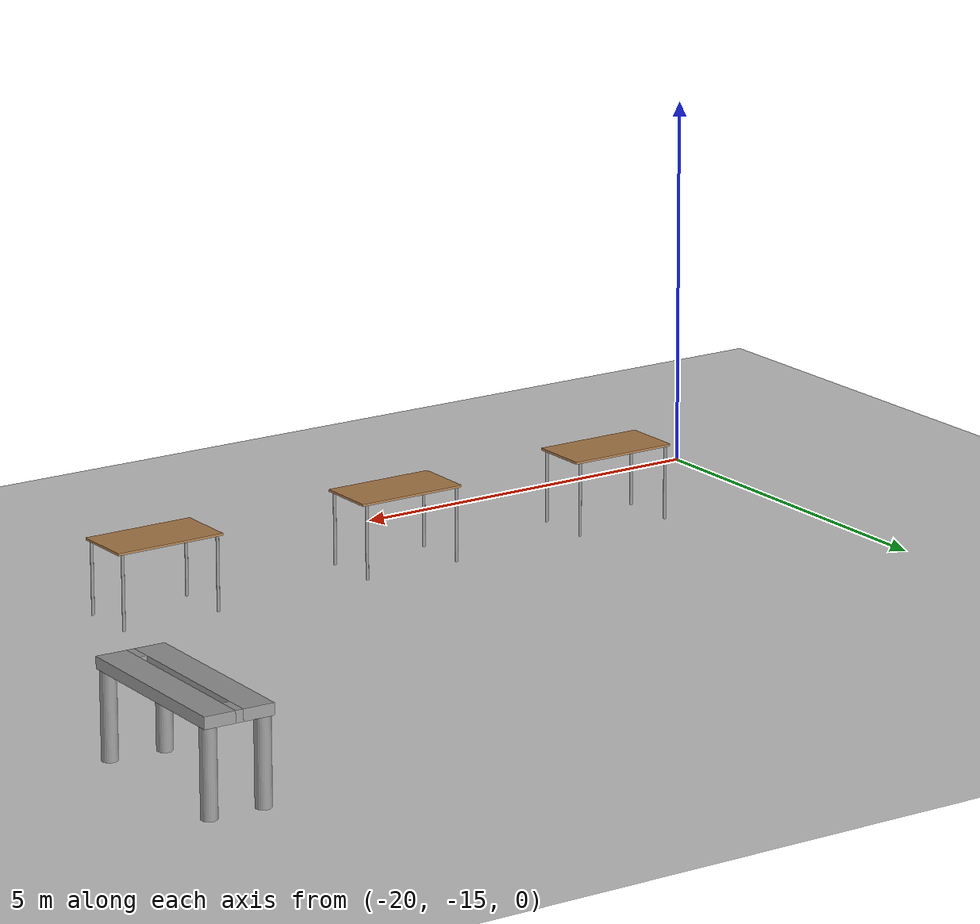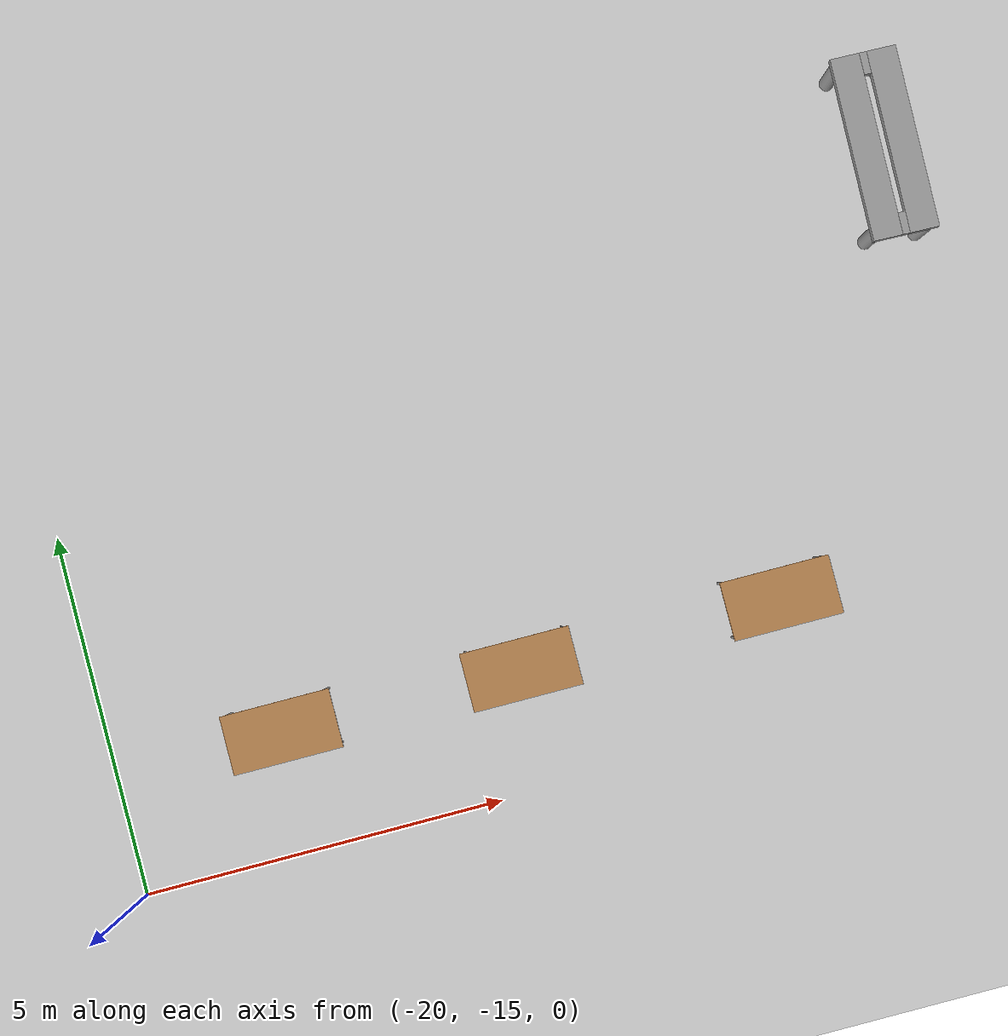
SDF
<sdf version="1.6">
 <world name="default">
  <model name="ground_plane">
   <static>1</static>
   <link name="link">
    <collision name="collision">
     <geometry><plane><normal>0 0 1</normal><size>100 100</size></plane></geometry>
     <surface><friction><ode><mu>100</mu><mu2>50</mu2></ode></friction></surface>
    </collision>
    <visual name="visual">
     <cast_shadows>0</cast_shadows>
     <geometry><plane><normal>0 0 1</normal><size>100 100</size></plane></geometry>
     <material>
      <script><uri>file://media/materials/scripts/gazebo.material</uri><name>Gazebo/Grey</name></script>
     </material>
    </visual>
   </link>
  </model>
  <model name="work_table">
   <link name="link_0">
    <pose>1.115 -0.35 -0.3125 0 -0 0</pose>
    <inertial>
     <mass>1</mass>
     <inertia><ixx>0.145833</ixx><ixy>0</ixy><ixz>0</ixz><iyy>0.145833</iyy><iyz>0</iyz><izz>0.125</izz></inertia>
    </inertial>
    <visual name="visual">
     <geometry><cylinder><radius>0.1</radius><length>1.1</length></cylinder></geometry>
     <material>
      <lighting>1</lighting>
      <script><uri>file://media/materials/scripts/gazebo.material</uri><name>Gazebo/Grey</name></script>
      <ambient>0.3 0.3 0.3 1</ambient>
      <diffuse>0.7 0.7 0.7 1</diffuse>
      <specular>0.01 0.01 0.01 1</specular>
      <emissive>0 0 0 1</emissive>
      <shader type="vertex"><normal_map>__default__</normal_map></shader>
     </material>
    </visual>
    <collision name="collision">
     <geometry><cylinder><radius>0.1</radius><length>1.1</length></cylinder></geometry>
     <surface>
      <friction>
       <ode><mu>1</mu><mu2>1</mu2><fdir1>0 0 0</fdir1><slip1>0</slip1><slip2>0</slip2></ode>
       <torsional>
        <coefficient>1</coefficient>
        <patch_radius>0</patch_radius>
        <surface_radius>0</surface_radius>
        <use_patch_radius>1</use_patch_radius>
        <ode><slip>0</slip></ode>
       </torsional>
      </friction>
      <bounce><restitution_coefficient>0</restitution_coefficient><threshold>1e+06</threshold></bounce>
      <contact>
       <collide_without_contact>0</collide_without_contact>
       <collide_without_contact_bitmask>1</collide_without_contact_bitmask>
       <collide_bitmask>1</collide_bitmask>
       <ode>
        <soft_cfm>0</soft_cfm>
        <soft_erp>0.2</soft_erp>
        <kp>1e+13</kp>
        <kd>1</kd>
        <max_vel>0.01</max_vel>
        <min_depth>0</min_depth>
       </ode>
       <bullet>
        <split_impulse>1</split_impulse>
        <split_impulse_penetration_threshold>-0.01</split_impulse_penetration_threshold>
        <soft_cfm>0</soft_cfm>
        <soft_erp>0.2</soft_erp>
        <kp>1e+13</kp>
        <kd>1</kd>
       </bullet>
      </contact>
     </surface>
    </collision>
   </link>
   <link name="link_0_clone">
    <pose>-1.145 -0.35 -0.3125 0 -0 0</pose>
    <inertial>
     <mass>1</mass>
     <inertia><ixx>0.145833</ixx><ixy>0</ixy><ixz>0</ixz><iyy>0.145833</iyy><iyz>0</iyz><izz>0.125</izz></inertia>
    </inertial>
    <visual name="visual">
     <geometry><cylinder><radius>0.1</radius><length>1.1</length></cylinder></geometry>
     <material>
      <lighting>1</lighting>
      <script><uri>file://media/materials/scripts/gazebo.material</uri><name>Gazebo/Grey</name></script>
      <ambient>0.3 0.3 0.3 1</ambient>
      <diffuse>0.7 0.7 0.7 1</diffuse>
      <specular>0.01 0.01 0.01 1</specular>
      <emissive>0 0 0 1</emissive>
      <shader type="vertex"><normal_map>__default__</normal_map></shader>
     </material>
    </visual>
    <collision name="collision">
     <geometry><cylinder><radius>0.1</radius><length>1.1</length></cylinder></geometry>
     <surface>
      <friction>
       <ode><mu>1</mu><mu2>1</mu2><fdir1>0 0 0</fdir1><slip1>0</slip1><slip2>0</slip2></ode>
       <torsional>
        <coefficient>1</coefficient>
        <patch_radius>0</patch_radius>
        <surface_radius>0</surface_radius>
        <use_patch_radius>1</use_patch_radius>
        <ode><slip>0</slip></ode>
       </torsional>
      </friction>
      <bounce><restitution_coefficient>0</restitution_coefficient><threshold>1e+06</threshold></bounce>
      <contact>
       <collide_without_contact>0</collide_without_contact>
       <collide_without_contact_bitmask>1</collide_without_contact_bitmask>
       <collide_bitmask>1</collide_bitmask>
       <ode>
        <soft_cfm>0</soft_cfm>
        <soft_erp>0.2</soft_erp>
        <kp>1e+13</kp>
        <kd>1</kd>
        <max_vel>0.01</max_vel>
        <min_depth>0</min_depth>
       </ode>
       <bullet>
        <split_impulse>1</split_impulse>
        <split_impulse_penetration_threshold>-0.01</split_impulse_penetration_threshold>
        <soft_cfm>0</soft_cfm>
        <soft_erp>0.2</soft_erp>
        <kp>1e+13</kp>
        <kd>1</kd>
       </bullet>
      </contact>
     </surface>
    </collision>
   </link>
   <link name="link_0_clone_0">
    <pose>-1.145 0.35 -0.3125 0 -0 0</pose>
    <inertial>
     <mass>1</mass>
     <inertia><ixx>0.145833</ixx><ixy>0</ixy><ixz>0</ixz><iyy>0.145833</iyy><iyz>0</iyz><izz>0.125</izz></inertia>
    </inertial>
    <visual name="visual">
     <geometry><cylinder><radius>0.1</radius><length>1.1</length></cylinder></geometry>
     <material>
      <lighting>1</lighting>
      <script><uri>file://media/materials/scripts/gazebo.material</uri><name>Gazebo/Grey</name></script>
      <ambient>0.3 0.3 0.3 1</ambient>
      <diffuse>0.7 0.7 0.7 1</diffuse>
      <specular>0.01 0.01 0.01 1</specular>
      <emissive>0 0 0 1</emissive>
      <shader type="vertex"><normal_map>__default__</normal_map></shader>
     </material>
    </visual>
    <collision name="collision">
     <geometry><cylinder><radius>0.1</radius><length>1.1</length></cylinder></geometry>
     <surface>
      <friction>
       <ode><mu>1</mu><mu2>1</mu2><fdir1>0 0 0</fdir1><slip1>0</slip1><slip2>0</slip2></ode>
       <torsional>
        <coefficient>1</coefficient>
        <patch_radius>0</patch_radius>
        <surface_radius>0</surface_radius>
        <use_patch_radius>1</use_patch_radius>
        <ode><slip>0</slip></ode>
       </torsional>
      </friction>
      <bounce><restitution_coefficient>0</restitution_coefficient><threshold>1e+06</threshold></bounce>
      <contact>
       <collide_without_contact>0</collide_without_contact>
       <collide_without_contact_bitmask>1</collide_without_contact_bitmask>
       <collide_bitmask>1</collide_bitmask>
       <ode>
        <soft_cfm>0</soft_cfm>
        <soft_erp>0.2</soft_erp>
        <kp>1e+13</kp>
        <kd>1</kd>
        <max_vel>0.01</max_vel>
        <min_depth>0</min_depth>
       </ode>
       <bullet>
        <split_impulse>1</split_impulse>
        <split_impulse_penetration_threshold>-0.01</split_impulse_penetration_threshold>
        <soft_cfm>0</soft_cfm>
        <soft_erp>0.2</soft_erp>
        <kp>1e+13</kp>
        <kd>1</kd>
       </bullet>
      </contact>
     </surface>
    </collision>
   </link>
   <link name="link_0_clone_1">
    <pose>1.155 0.35 -0.3125 0 -0 0</pose>
    <inertial>
     <mass>1</mass>
     <inertia><ixx>0.145833</ixx><ixy>0</ixy><ixz>0</ixz><iyy>0.145833</iyy><iyz>0</iyz><izz>0.125</izz></inertia>
    </inertial>
    <visual name="visual">
     <geometry><cylinder><radius>0.1</radius><length>1.1</length></cylinder></geometry>
     <material>
      <lighting>1</lighting>
      <script><uri>file://media/materials/scripts/gazebo.material</uri><name>Gazebo/Grey</name></script>
      <ambient>0.3 0.3 0.3 1</ambient>
      <diffuse>0.7 0.7 0.7 1</diffuse>
      <specular>0.01 0.01 0.01 1</specular>
      <emissive>0 0 0 1</emissive>
      <shader type="vertex"><normal_map>__default__</normal_map></shader>
     </material>
    </visual>
    <collision name="collision">
     <geometry><cylinder><radius>0.1</radius><length>1.1</length></cylinder></geometry>
     <surface>
      <friction>
       <ode><mu>1</mu><mu2>1</mu2><fdir1>0 0 0</fdir1><slip1>0</slip1><slip2>0</slip2></ode>
       <torsional>
        <coefficient>1</coefficient>
        <patch_radius>0</patch_radius>
        <surface_radius>0</surface_radius>
        <use_patch_radius>1</use_patch_radius>
        <ode><slip>0</slip></ode>
       </torsional>
      </friction>
      <bounce><restitution_coefficient>0</restitution_coefficient><threshold>1e+06</threshold></bounce>
      <contact>
       <collide_without_contact>0</collide_without_contact>
       <collide_without_contact_bitmask>1</collide_without_contact_bitmask>
       <collide_bitmask>1</collide_bitmask>
       <ode>
        <soft_cfm>0</soft_cfm>
        <soft_erp>0.2</soft_erp>
        <kp>1e+13</kp>
        <kd>1</kd>
        <max_vel>0.01</max_vel>
        <min_depth>0</min_depth>
       </ode>
       <bullet>
        <split_impulse>1</split_impulse>
        <split_impulse_penetration_threshold>-0.01</split_impulse_penetration_threshold>
        <soft_cfm>0</soft_cfm>
        <soft_erp>0.2</soft_erp>
        <kp>1e+13</kp>
        <kd>1</kd>
       </bullet>
      </contact>
     </surface>
    </collision>
   </link>
   <link name="link_1">
    <pose>0.005 -0.25 0.3125 0 -0 0</pose>
    <inertial>
     <mass>1</mass>
     <inertia>
      <ixx>0.166667</ixx>
      <ixy>0</ixy>
      <ixz>0</ixz>
      <iyy>0.166667</iyy>
      <iyz>0</iyz>
      <izz>0.166667</izz>
     </inertia>
    </inertial>
    <visual name="visual">
     <geometry><box><size>2.5 0.4 0.15</size></box></geometry>
     <material>
      <lighting>1</lighting>
      <script><uri>file://media/materials/scripts/gazebo.material</uri><name>Gazebo/Grey</name></script>
      <ambient>0.3 0.3 0.3 1</ambient>
      <diffuse>0.7 0.7 0.7 1</diffuse>
      <specular>0.01 0.01 0.01 1</specular>
      <emissive>0 0 0 1</emissive>
      <shader type="vertex"><normal_map>__default__</normal_map></shader>
     </material>
    </visual>
    <collision name="collision">
     <geometry><box><size>2.5 0.4 0.15</size></box></geometry>
     <surface>
      <friction>
       <ode><mu>1</mu><mu2>1</mu2><fdir1>0 0 0</fdir1><slip1>0</slip1><slip2>0</slip2></ode>
       <torsional>
        <coefficient>1</coefficient>
        <patch_radius>0</patch_radius>
        <surface_radius>0</surface_radius>
        <use_patch_radius>1</use_patch_radius>
        <ode><slip>0</slip></ode>
       </torsional>
      </friction>
      <bounce><restitution_coefficient>0</restitution_coefficient><threshold>1e+06</threshold></bounce>
      <contact>
       <collide_without_contact>0</collide_without_contact>
       <collide_without_contact_bitmask>1</collide_without_contact_bitmask>
       <collide_bitmask>1</collide_bitmask>
       <ode>
        <soft_cfm>0</soft_cfm>
        <soft_erp>0.2</soft_erp>
        <kp>1e+13</kp>
        <kd>1</kd>
        <max_vel>0.01</max_vel>
        <min_depth>0</min_depth>
       </ode>
       <bullet>
        <split_impulse>1</split_impulse>
        <split_impulse_penetration_threshold>-0.01</split_impulse_penetration_threshold>
        <soft_cfm>0</soft_cfm>
        <soft_erp>0.2</soft_erp>
        <kp>1e+13</kp>
        <kd>1</kd>
       </bullet>
      </contact>
     </surface>
    </collision>
   </link>
   <link name="link_1_clone">
    <pose>0.005 0.25 0.3125 0 -0 0</pose>
    <inertial>
     <mass>1</mass>
     <inertia>
      <ixx>0.166667</ixx>
      <ixy>0</ixy>
      <ixz>0</ixz>
      <iyy>0.166667</iyy>
      <iyz>0</iyz>
      <izz>0.166667</izz>
     </inertia>
    </inertial>
    <visual name="visual">
     <geometry><box><size>2.5 0.4 0.15</size></box></geometry>
     <material>
      <lighting>1</lighting>
      <script><uri>file://media/materials/scripts/gazebo.material</uri><name>Gazebo/Grey</name></script>
      <ambient>0.3 0.3 0.3 1</ambient>
      <diffuse>0.7 0.7 0.7 1</diffuse>
      <specular>0.01 0.01 0.01 1</specular>
      <emissive>0 0 0 1</emissive>
      <shader type="vertex"><normal_map>__default__</normal_map></shader>
     </material>
    </visual>
    <collision name="collision">
     <geometry><box><size>2.5 0.4 0.15</size></box></geometry>
     <surface>
      <friction>
       <ode><mu>1</mu><mu2>1</mu2><fdir1>0 0 0</fdir1><slip1>0</slip1><slip2>0</slip2></ode>
       <torsional>
        <coefficient>1</coefficient>
        <patch_radius>0</patch_radius>
        <surface_radius>0</surface_radius>
        <use_patch_radius>1</use_patch_radius>
        <ode><slip>0</slip></ode>
       </torsional>
      </friction>
      <bounce><restitution_coefficient>0</restitution_coefficient><threshold>1e+06</threshold></bounce>
      <contact>
       <collide_without_contact>0</collide_without_contact>
       <collide_without_contact_bitmask>1</collide_without_contact_bitmask>
       <collide_bitmask>1</collide_bitmask>
       <ode>
        <soft_cfm>0</soft_cfm>
        <soft_erp>0.2</soft_erp>
        <kp>1e+13</kp>
        <kd>1</kd>
        <max_vel>0.01</max_vel>
        <min_depth>0</min_depth>
       </ode>
       <bullet>
        <split_impulse>1</split_impulse>
        <split_impulse_penetration_threshold>-0.01</split_impulse_penetration_threshold>
        <soft_cfm>0</soft_cfm>
        <soft_erp>0.2</soft_erp>
        <kp>1e+13</kp>
        <kd>1</kd>
       </bullet>
      </contact>
     </surface>
    </collision>
   </link>
   <link name="link_1_clone_0">
    <pose>-1.095 0 0.3125 0 -0 0</pose>
    <inertial>
     <mass>1</mass>
     <inertia>
      <ixx>0.166667</ixx>
      <ixy>0</ixy>
      <ixz>0</ixz>
      <iyy>0.166667</iyy>
      <iyz>0</iyz>
      <izz>0.166667</izz>
     </inertia>
    </inertial>
    <visual name="visual">
     <geometry><box><size>0.3 0.1 0.15</size></box></geometry>
     <material>
      <lighting>1</lighting>
      <script><uri>file://media/materials/scripts/gazebo.material</uri><name>Gazebo/Grey</name></script>
      <ambient>0.3 0.3 0.3 1</ambient>
      <diffuse>0.7 0.7 0.7 1</diffuse>
      <specular>0.01 0.01 0.01 1</specular>
      <emissive>0 0 0 1</emissive>
      <shader type="vertex"><normal_map>__default__</normal_map></shader>
     </material>
    </visual>
    <collision name="collision">
     <geometry><box><size>0.3 0.1 0.15</size></box></geometry>
     <surface>
      <friction>
       <ode><mu>1</mu><mu2>1</mu2><fdir1>0 0 0</fdir1><slip1>0</slip1><slip2>0</slip2></ode>
       <torsional>
        <coefficient>1</coefficient>
        <patch_radius>0</patch_radius>
        <surface_radius>0</surface_radius>
        <use_patch_radius>1</use_patch_radius>
        <ode><slip>0</slip></ode>
       </torsional>
      </friction>
      <bounce><restitution_coefficient>0</restitution_coefficient><threshold>1e+06</threshold></bounce>
      <contact>
       <collide_without_contact>0</collide_without_contact>
       <collide_without_contact_bitmask>1</collide_without_contact_bitmask>
       <collide_bitmask>1</collide_bitmask>
       <ode>
        <soft_cfm>0</soft_cfm>
        <soft_erp>0.2</soft_erp>
        <kp>1e+13</kp>
        <kd>1</kd>
        <max_vel>0.01</max_vel>
        <min_depth>0</min_depth>
       </ode>
       <bullet>
        <split_impulse>1</split_impulse>
        <split_impulse_penetration_threshold>-0.01</split_impulse_penetration_threshold>
        <soft_cfm>0</soft_cfm>
        <soft_erp>0.2</soft_erp>
        <kp>1e+13</kp>
        <kd>1</kd>
       </bullet>
      </contact>
     </surface>
    </collision>
   </link>
   <link name="link_1_clone_0_clone">
    <pose>1.105 0 0.3125 0 -0 0</pose>
    <inertial>
     <mass>1</mass>
     <inertia>
      <ixx>0.166667</ixx>
      <ixy>0</ixy>
      <ixz>0</ixz>
      <iyy>0.166667</iyy>
      <iyz>0</iyz>
      <izz>0.166667</izz>
     </inertia>
    </inertial>
    <visual name="visual">
     <geometry><box><size>0.3 0.1 0.15</size></box></geometry>
     <material>
      <lighting>1</lighting>
      <script><uri>file://media/materials/scripts/gazebo.material</uri><name>Gazebo/Grey</name></script>
      <ambient>0.3 0.3 0.3 1</ambient>
      <diffuse>0.7 0.7 0.7 1</diffuse>
      <specular>0.01 0.01 0.01 1</specular>
      <emissive>0 0 0 1</emissive>
      <shader type="vertex"><normal_map>__default__</normal_map></shader>
     </material>
    </visual>
    <collision name="collision">
     <geometry><box><size>0.3 0.1 0.15</size></box></geometry>
     <surface>
      <friction>
       <ode><mu>1</mu><mu2>1</mu2><fdir1>0 0 0</fdir1><slip1>0</slip1><slip2>0</slip2></ode>
       <torsional>
        <coefficient>1</coefficient>
        <patch_radius>0</patch_radius>
        <surface_radius>0</surface_radius>
        <use_patch_radius>1</use_patch_radius>
        <ode><slip>0</slip></ode>
       </torsional>
      </friction>
      <bounce><restitution_coefficient>0</restitution_coefficient><threshold>1e+06</threshold></bounce>
      <contact>
       <collide_without_contact>0</collide_without_contact>
       <collide_without_contact_bitmask>1</collide_without_contact_bitmask>
       <collide_bitmask>1</collide_bitmask>
       <ode>
        <soft_cfm>0</soft_cfm>
        <soft_erp>0.2</soft_erp>
        <kp>1e+13</kp>
        <kd>1</kd>
        <max_vel>0.01</max_vel>
        <min_depth>0</min_depth>
       </ode>
       <bullet>
        <split_impulse>1</split_impulse>
        <split_impulse_penetration_threshold>-0.01</split_impulse_penetration_threshold>
        <soft_cfm>0</soft_cfm>
        <soft_erp>0.2</soft_erp>
        <kp>1e+13</kp>
        <kd>1</kd>
       </bullet>
      </contact>
     </surface>
    </collision>
   </link>
   <joint name="link_1_JOINT_0" type="fixed">
    <parent>link_1</parent>
    <child>link_1_clone_0</child>
    <physics>
     <ode><limit><cfm>0</cfm><erp>0.2</erp></limit><suspension><cfm>0</cfm><erp>0.2</erp></suspension></ode>
    </physics>
   </joint>
   <joint name="link_1_JOINT_1" type="fixed">
    <parent>link_1</parent>
    <child>link_1_clone_0_clone</child>
    <physics>
     <ode><limit><cfm>0</cfm><erp>0.2</erp></limit><suspension><cfm>0</cfm><erp>0.2</erp></suspension></ode>
    </physics>
   </joint>
   <joint name="link_1_JOINT_2" type="fixed">
    <parent>link_1</parent>
    <child>link_1_clone</child>
    <physics>
     <ode><limit><cfm>0</cfm><erp>0.2</erp></limit><suspension><cfm>0</cfm><erp>0.2</erp></suspension></ode>
    </physics>
   </joint>
   <joint name="link_1_JOINT_3" type="fixed">
    <parent>link_1</parent>
    <child>link_0_clone</child>
    <physics>
     <ode><limit><cfm>0</cfm><erp>0.2</erp></limit><suspension><cfm>0</cfm><erp>0.2</erp></suspension></ode>
    </physics>
   </joint>
   <joint name="link_1_JOINT_4" type="fixed">
    <parent>link_1</parent>
    <child>link_0</child>
    <physics>
     <ode><limit><cfm>0</cfm><erp>0.2</erp></limit><suspension><cfm>0</cfm><erp>0.2</erp></suspension></ode>
    </physics>
   </joint>
   <joint name="link_1_clone_JOINT_5" type="fixed">
    <parent>link_1_clone</parent>
    <child>link_0_clone_0</child>
    <physics>
     <ode><limit><cfm>0</cfm><erp>0.2</erp></limit><suspension><cfm>0</cfm><erp>0.2</erp></suspension></ode>
    </physics>
   </joint>
   <joint name="link_1_clone_JOINT_6" type="fixed">
    <parent>link_1_clone</parent>
    <child>link_0_clone_1</child>
    <physics>
     <ode><limit><cfm>0</cfm><erp>0.2</erp></limit><suspension><cfm>0</cfm><erp>0.2</erp></suspension></ode>
    </physics>
   </joint>
   <static>0</static>
   <pose>-7.84402 -7.75197 0.862498 3e-06 0 -1.59731</pose>
  </model>
  <model name="table">
   <static>1</static>
   <link name="link">
    <collision name="surface">
     <pose>0 0 1 0 -0 0</pose>
     <geometry><box><size>1.5 0.8 0.03</size></box></geometry>
     <surface><friction><ode><mu>0.6</mu><mu2>0.6</mu2></ode></friction></surface>
    </collision>
    <visual name="visual1">
     <pose>0 0 1 0 -0 0</pose>
     <geometry><box><size>1.5 0.8 0.03</size></box></geometry>
     <material>
      <script><uri>file://media/materials/scripts/gazebo.material</uri><name>Gazebo/Wood</name></script>
     </material>
    </visual>
    <collision name="front_left_leg">
     <pose>0.68 0.38 0.5 0 -0 0</pose>
     <geometry><cylinder><radius>0.02</radius><length>1</length></cylinder></geometry>
    </collision>
    <visual name="front_left_leg">
     <pose>0.68 0.38 0.5 0 -0 0</pose>
     <geometry><cylinder><radius>0.02</radius><length>1</length></cylinder></geometry>
     <material>
      <script><uri>file://media/materials/scripts/gazebo.material</uri><name>Gazebo/Grey</name></script>
     </material>
    </visual>
    <collision name="front_right_leg">
     <pose>0.68 -0.38 0.5 0 -0 0</pose>
     <geometry><cylinder><radius>0.02</radius><length>1</length></cylinder></geometry>
    </collision>
    <visual name="front_right_leg">
     <pose>0.68 -0.38 0.5 0 -0 0</pose>
     <geometry><cylinder><radius>0.02</radius><length>1</length></cylinder></geometry>
     <material>
      <script><uri>file://media/materials/scripts/gazebo.material</uri><name>Gazebo/Grey</name></script>
     </material>
    </visual>
    <collision name="back_right_leg">
     <pose>-0.68 -0.38 0.5 0 -0 0</pose>
     <geometry><cylinder><radius>0.02</radius><length>1</length></cylinder></geometry>
    </collision>
    <visual name="back_right_leg">
     <pose>-0.68 -0.38 0.5 0 -0 0</pose>
     <geometry><cylinder><radius>0.02</radius><length>1</length></cylinder></geometry>
     <material>
      <script><uri>file://media/materials/scripts/gazebo.material</uri><name>Gazebo/Grey</name></script>
     </material>
    </visual>
    <collision name="back_left_leg">
     <pose>-0.68 0.38 0.5 0 -0 0</pose>
     <geometry><cylinder><radius>0.02</radius><length>1</length></cylinder></geometry>
    </collision>
    <visual name="back_left_leg">
     <pose>-0.68 0.38 0.5 0 -0 0</pose>
     <geometry><cylinder><radius>0.02</radius><length>1</length></cylinder></geometry>
     <material>
      <script><uri>file://media/materials/scripts/gazebo.material</uri><name>Gazebo/Grey</name></script>
     </material>
    </visual>
   </link>
   <pose>-17.5947 -13.2954 0 0 -0 0</pose>
  </model>
  <model name="table_0">
   <static>1</static>
   <link name="link">
    <collision name="surface">
     <pose>0 0 1 0 -0 0</pose>
     <geometry><box><size>1.5 0.8 0.03</size></box></geometry>
     <surface><friction><ode><mu>0.6</mu><mu2>0.6</mu2></ode></friction></surface>
    </collision>
    <visual name="visual1">
     <pose>0 0 1 0 -0 0</pose>
     <geometry><box><size>1.5 0.8 0.03</size></box></geometry>
     <material>
      <script><uri>file://media/materials/scripts/gazebo.material</uri><name>Gazebo/Wood</name></script>
     </material>
    </visual>
    <collision name="front_left_leg">
     <pose>0.68 0.38 0.5 0 -0 0</pose>
     <geometry><cylinder><radius>0.02</radius><length>1</length></cylinder></geometry>
    </collision>
    <visual name="front_left_leg">
     <pose>0.68 0.38 0.5 0 -0 0</pose>
     <geometry><cylinder><radius>0.02</radius><length>1</length></cylinder></geometry>
     <material>
      <script><uri>file://media/materials/scripts/gazebo.material</uri><name>Gazebo/Grey</name></script>
     </material>
    </visual>
    <collision name="front_right_leg">
     <pose>0.68 -0.38 0.5 0 -0 0</pose>
     <geometry><cylinder><radius>0.02</radius><length>1</length></cylinder></geometry>
    </collision>
    <visual name="front_right_leg">
     <pose>0.68 -0.38 0.5 0 -0 0</pose>
     <geometry><cylinder><radius>0.02</radius><length>1</length></cylinder></geometry>
     <material>
      <script><uri>file://media/materials/scripts/gazebo.material</uri><name>Gazebo/Grey</name></script>
     </material>
    </visual>
    <collision name="back_right_leg">
     <pose>-0.68 -0.38 0.5 0 -0 0</pose>
     <geometry><cylinder><radius>0.02</radius><length>1</length></cylinder></geometry>
    </collision>
    <visual name="back_right_leg">
     <pose>-0.68 -0.38 0.5 0 -0 0</pose>
     <geometry><cylinder><radius>0.02</radius><length>1</length></cylinder></geometry>
     <material>
      <script><uri>file://media/materials/scripts/gazebo.material</uri><name>Gazebo/Grey</name></script>
     </material>
    </visual>
    <collision name="back_left_leg">
     <pose>-0.68 0.38 0.5 0 -0 0</pose>
     <geometry><cylinder><radius>0.02</radius><length>1</length></cylinder></geometry>
    </collision>
    <visual name="back_left_leg">
     <pose>-0.68 0.38 0.5 0 -0 0</pose>
     <geometry><cylinder><radius>0.02</radius><length>1</length></cylinder></geometry>
     <material>
      <script><uri>file://media/materials/scripts/gazebo.material</uri><name>Gazebo/Grey</name></script>
     </material>
    </visual>
   </link>
   <pose>-14.3026 -13.2982 0 0 -0 0</pose>
  </model>
  <model name="table_1">
   <static>1</static>
   <link name="link">
    <collision name="surface">
     <pose>0 0 1 0 -0 0</pose>
     <geometry><box><size>1.5 0.8 0.03</size></box></geometry>
     <surface><friction><ode><mu>0.6</mu><mu2>0.6</mu2></ode></friction></surface>
    </collision>
    <visual name="visual1">
     <pose>0 0 1 0 -0 0</pose>
     <geometry><box><size>1.5 0.8 0.03</size></box></geometry>
     <material>
      <script><uri>file://media/materials/scripts/gazebo.material</uri><name>Gazebo/Wood</name></script>
     </material>
    </visual>
    <collision name="front_left_leg">
     <pose>0.68 0.38 0.5 0 -0 0</pose>
     <geometry><cylinder><radius>0.02</radius><length>1</length></cylinder></geometry>
    </collision>
    <visual name="front_left_leg">
     <pose>0.68 0.38 0.5 0 -0 0</pose>
     <geometry><cylinder><radius>0.02</radius><length>1</length></cylinder></geometry>
     <material>
      <script><uri>file://media/materials/scripts/gazebo.material</uri><name>Gazebo/Grey</name></script>
     </material>
    </visual>
    <collision name="front_right_leg">
     <pose>0.68 -0.38 0.5 0 -0 0</pose>
     <geometry><cylinder><radius>0.02</radius><length>1</length></cylinder></geometry>
    </collision>
    <visual name="front_right_leg">
     <pose>0.68 -0.38 0.5 0 -0 0</pose>
     <geometry><cylinder><radius>0.02</radius><length>1</length></cylinder></geometry>
     <material>
      <script><uri>file://media/materials/scripts/gazebo.material</uri><name>Gazebo/Grey</name></script>
     </material>
    </visual>
    <collision name="back_right_leg">
     <pose>-0.68 -0.38 0.5 0 -0 0</pose>
     <geometry><cylinder><radius>0.02</radius><length>1</length></cylinder></geometry>
    </collision>
    <visual name="back_right_leg">
     <pose>-0.68 -0.38 0.5 0 -0 0</pose>
     <geometry><cylinder><radius>0.02</radius><length>1</length></cylinder></geometry>
     <material>
      <script><uri>file://media/materials/scripts/gazebo.material</uri><name>Gazebo/Grey</name></script>
     </material>
    </visual>
    <collision name="back_left_leg">
     <pose>-0.68 0.38 0.5 0 -0 0</pose>
     <geometry><cylinder><radius>0.02</radius><length>1</length></cylinder></geometry>
    </collision>
    <visual name="back_left_leg">
     <pose>-0.68 0.38 0.5 0 -0 0</pose>
     <geometry><cylinder><radius>0.02</radius><length>1</length></cylinder></geometry>
     <material>
      <script><uri>file://media/materials/scripts/gazebo.material</uri><name>Gazebo/Grey</name></script>
     </material>
    </visual>
   </link>
   <pose>-10.7124 -13.2639 0 0 -0 0</pose>
  </model>
 </world>
</sdf>
